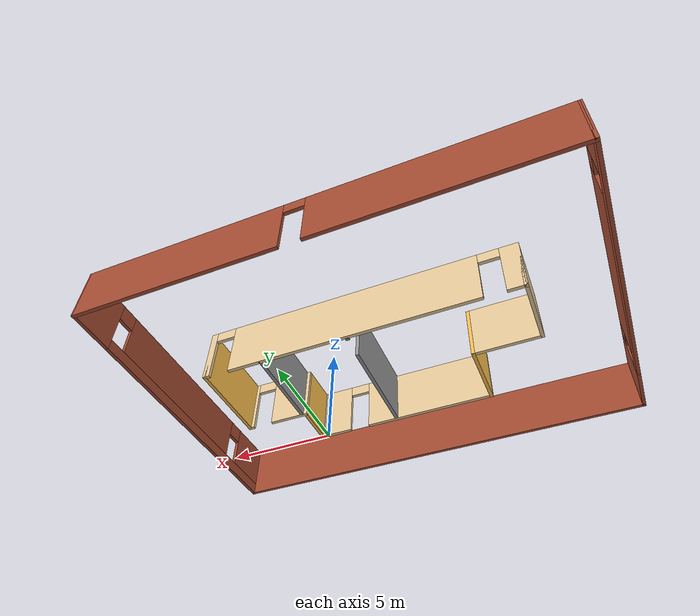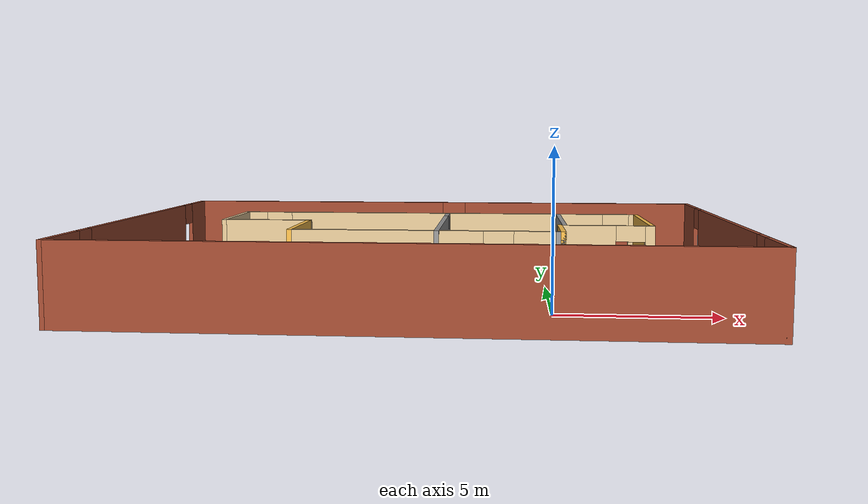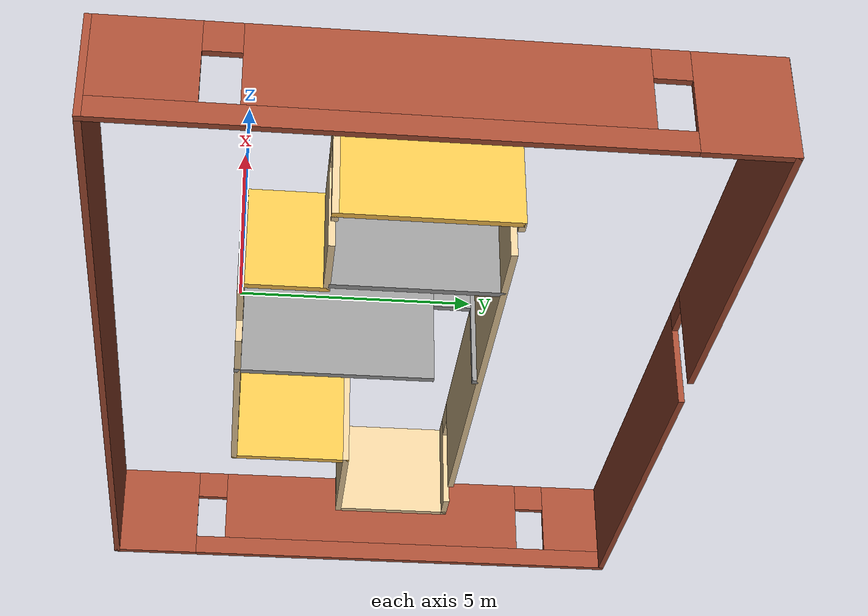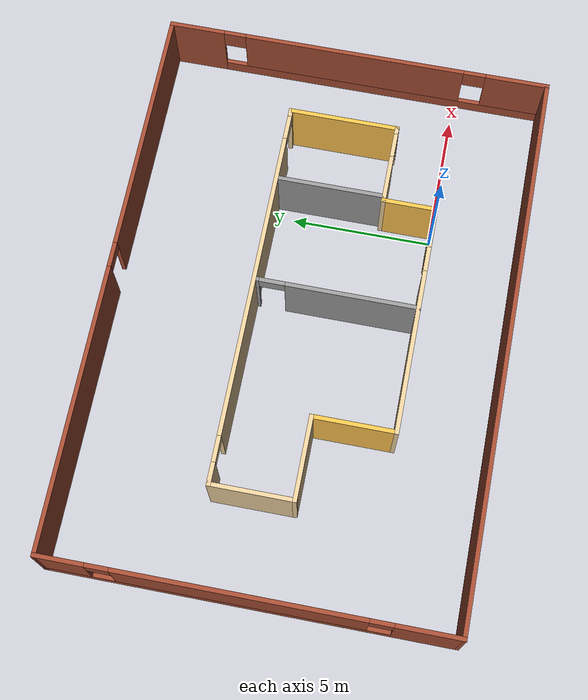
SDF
<?xml version='1.0'?>
<sdf version='1.6'>
  <model name='p1building'>
    <pose frame=''>-4.0735 3.744 0 0 -0 0</pose>
    <link name='Wall_0'>
      <pose frame=''>0.1485 -3.744 0 0 -0 3.14159</pose>
      <visual name='Wall_0_Visual_0'>
        <pose frame=''>-3.3877 0 1.25 0 -0 0</pose>
        <geometry>
          <box>
            <size>1.22459 0.15 2.5</size>
          </box>
        </geometry>
        <material>
          <script>
            <uri>file://media/materials/scripts/gazebo.material</uri>
            <name>Gazebo/Grey</name>
          </script>
          <ambient>0.921569 0.807843 0.615686 1</ambient>
        </material>
        <meta>
          <layer>0</layer>
        </meta>
      </visual>
      <collision name='Wall_0_Collision_0'>
        <geometry>
          <box>
            <size>1.22459 0.15 2.5</size>
          </box>
        </geometry>
        <pose frame=''>-3.3877 0 1.25 0 -0 0</pose>
      </collision>
      <visual name='Wall_0_Visual_1'>
        <pose frame=''>1.0623 0 1.25 0 -0 0</pose>
        <geometry>
          <box>
            <size>5.87541 0.15 2.5</size>
          </box>
        </geometry>
        <material>
          <script>
            <uri>file://media/materials/scripts/gazebo.material</uri>
            <name>Gazebo/Grey</name>
          </script>
          <ambient>0.921569 0.807843 0.615686 1</ambient>
        </material>
        <meta>
          <layer>0</layer>
        </meta>
      </visual>
      <collision name='Wall_0_Collision_1'>
        <geometry>
          <box>
            <size>5.87541 0.15 2.5</size>
          </box>
        </geometry>
        <pose frame=''>1.0623 0 1.25 0 -0 0</pose>
      </collision>
      <visual name='Wall_0_Visual_2'>
        <pose frame=''>-2.32541 0 2.25 0 -0 0</pose>
        <geometry>
          <box>
            <size>0.9 0.15 0.5</size>
          </box>
        </geometry>
        <material>
          <script>
            <uri>file://media/materials/scripts/gazebo.material</uri>
            <name>Gazebo/Grey</name>
          </script>
          <ambient>0.921569 0.807843 0.615686 1</ambient>
        </material>
        <meta>
          <layer>0</layer>
        </meta>
      </visual>
      <collision name='Wall_0_Collision_2'>
        <geometry>
          <box>
            <size>0.9 0.15 0.5</size>
          </box>
        </geometry>
        <pose frame=''>-2.32541 0 2.25 0 -0 0</pose>
      </collision>
    </link>
    <link name='Wall_10'>
      <pose frame=''>5.7985 -1.894 0 0 -0 3.14159</pose>
      <visual name='Wall_10_Visual_0'>
        <pose frame=''>-1.35058 0 1.25 0 -0 0</pose>
        <geometry>
          <box>
            <size>0.298838 0.15 2.5</size>
          </box>
        </geometry>
        <material>
          <script>
            <uri>file://media/materials/scripts/gazebo.material</uri>
            <name>Gazebo/Grey</name>
          </script>
          <ambient>0.921569 0.807843 0.615686 1</ambient>
        </material>
        <meta>
          <layer>0</layer>
        </meta>
      </visual>
      <collision name='Wall_10_Collision_0'>
        <geometry>
          <box>
            <size>0.298838 0.15 2.5</size>
          </box>
        </geometry>
        <pose frame=''>-1.35058 0 1.25 0 -0 0</pose>
      </collision>
      <visual name='Wall_10_Visual_1'>
        <pose frame=''>0.599419 0 1.25 0 -0 0</pose>
        <geometry>
          <box>
            <size>1.80116 0.15 2.5</size>
          </box>
        </geometry>
        <material>
          <script>
            <uri>file://media/materials/scripts/gazebo.material</uri>
            <name>Gazebo/Grey</name>
          </script>
          <ambient>0.921569 0.807843 0.615686 1</ambient>
        </material>
        <meta>
          <layer>0</layer>
        </meta>
      </visual>
      <collision name='Wall_10_Collision_1'>
        <geometry>
          <box>
            <size>1.80116 0.15 2.5</size>
          </box>
        </geometry>
        <pose frame=''>0.599419 0 1.25 0 -0 0</pose>
      </collision>
      <visual name='Wall_10_Visual_2'>
        <pose frame=''>-0.751162 0 2.25 0 -0 0</pose>
        <geometry>
          <box>
            <size>0.9 0.15 0.5</size>
          </box>
        </geometry>
        <material>
          <script>
            <uri>file://media/materials/scripts/gazebo.material</uri>
            <name>Gazebo/Grey</name>
          </script>
          <ambient>0.921569 0.807843 0.615686 1</ambient>
        </material>
        <meta>
          <layer>0</layer>
        </meta>
      </visual>
      <collision name='Wall_10_Collision_2'>
        <geometry>
          <box>
            <size>0.9 0.15 0.5</size>
          </box>
        </geometry>
        <pose frame=''>-0.751162 0 2.25 0 -0 0</pose>
      </collision>
    </link>
    <link name='Wall_12'>
      <collision name='Wall_12_Collision'>
        <geometry>
          <box>
            <size>2 0.15 2.5</size>
          </box>
        </geometry>
        <pose frame=''>0 0 1.25 0 -0 0</pose>
      </collision>
      <visual name='Wall_12_Visual'>
        <pose frame=''>0 0 1.25 0 -0 0</pose>
        <geometry>
          <box>
            <size>2 0.15 2.5</size>
          </box>
        </geometry>
        <material>
          <script>
            <uri>file://media/materials/scripts/gazebo.material</uri>
            <name>Gazebo/Grey</name>
          </script>
          <ambient>1 0.764706 0.305882 1</ambient>
        </material>
        <meta>
          <layer>0</layer>
        </meta>
      </visual>
      <pose frame=''>4.3735 -2.819 0 0 0 -1.5708</pose>
    </link>
    <link name='Wall_13'>
      <collision name='Wall_13_Collision'>
        <geometry>
          <box>
            <size>0.45 0.15 2.5</size>
          </box>
        </geometry>
        <pose frame=''>0 0 1.25 0 -0 0</pose>
      </collision>
      <visual name='Wall_13_Visual'>
        <pose frame=''>0 0 1.25 0 -0 0</pose>
        <geometry>
          <box>
            <size>0.45 0.15 2.5</size>
          </box>
        </geometry>
        <material>
          <script>
            <uri>file://media/materials/scripts/gazebo.material</uri>
            <name>Gazebo/Grey</name>
          </script>
          <ambient>1 1 1 1</ambient>
        </material>
        <meta>
          <layer>0</layer>
        </meta>
      </visual>
      <pose frame=''>4.2235 -3.744 0 0 -0 3.14159</pose>
    </link>
    <link name='Wall_15'>
      <collision name='Wall_15_Collision'>
        <geometry>
          <box>
            <size>20 0.15 2.5</size>
          </box>
        </geometry>
        <pose frame=''>0 0 1.25 0 -0 0</pose>
      </collision>
      <visual name='Wall_15_Visual'>
        <pose frame=''>0 0 1.25 0 -0 0</pose>
        <geometry>
          <box>
            <size>20 0.15 2.5</size>
          </box>
        </geometry>
        <material>
          <script>
            <uri>file://media/materials/scripts/gazebo.material</uri>
            <name>Gazebo/Bricks</name>
          </script>
          <ambient>1 1 1 1</ambient>
        </material>
        <meta>
          <layer>0</layer>
        </meta>
      </visual>
      <pose frame=''>0.0025 -6.925 0 0 -0 3.14159</pose>
    </link>
    <link name='Wall_16'>
      <pose frame=''>-9.925 0 0 0 -0 1.57116</pose>
      <visual name='Wall_16_Visual_0'>
        <pose frame=''>-5.85842 0 1.25 0 -0 0</pose>
        <geometry>
          <box>
            <size>2.28316 0.15 2.5</size>
          </box>
        </geometry>
        <material>
          <script>
            <uri>file://media/materials/scripts/gazebo.material</uri>
            <name>Gazebo/Bricks</name>
          </script>
          <ambient>1 1 1 1</ambient>
        </material>
        <meta>
          <layer>0</layer>
        </meta>
      </visual>
      <collision name='Wall_16_Collision_0'>
        <geometry>
          <box>
            <size>2.28316 0.15 2.5</size>
          </box>
        </geometry>
        <pose frame=''>-5.85842 0 1.25 0 -0 0</pose>
      </collision>
      <visual name='Wall_16_Visual_1'>
        <pose frame=''>1.14158 0 0.25 0 -0 0</pose>
        <geometry>
          <box>
            <size>11.7168 0.15 0.5</size>
          </box>
        </geometry>
        <material>
          <script>
            <uri>file://media/materials/scripts/gazebo.material</uri>
            <name>Gazebo/Bricks</name>
          </script>
          <ambient>1 1 1 1</ambient>
        </material>
        <meta>
          <layer>0</layer>
        </meta>
      </visual>
      <collision name='Wall_16_Collision_1'>
        <geometry>
          <box>
            <size>11.7168 0.15 0.5</size>
          </box>
        </geometry>
        <pose frame=''>1.14158 0 0.25 0 -0 0</pose>
      </collision>
      <visual name='Wall_16_Visual_2'>
        <pose frame=''>0.280596 0 1.5 0 -0 0</pose>
        <geometry>
          <box>
            <size>8.39488 0.15 2</size>
          </box>
        </geometry>
        <material>
          <script>
            <uri>file://media/materials/scripts/gazebo.material</uri>
            <name>Gazebo/Bricks</name>
          </script>
          <ambient>1 1 1 1</ambient>
        </material>
        <meta>
          <layer>0</layer>
        </meta>
      </visual>
      <collision name='Wall_16_Collision_2'>
        <geometry>
          <box>
            <size>8.39488 0.15 2</size>
          </box>
        </geometry>
        <pose frame=''>0.280596 0 1.5 0 -0 0</pose>
      </collision>
      <visual name='Wall_16_Visual_3'>
        <pose frame=''>6.13902 0 1.5 0 -0 0</pose>
        <geometry>
          <box>
            <size>1.72196 0.15 2</size>
          </box>
        </geometry>
        <material>
          <script>
            <uri>file://media/materials/scripts/gazebo.material</uri>
            <name>Gazebo/Bricks</name>
          </script>
          <ambient>1 1 1 1</ambient>
        </material>
        <meta>
          <layer>0</layer>
        </meta>
      </visual>
      <collision name='Wall_16_Collision_3'>
        <geometry>
          <box>
            <size>1.72196 0.15 2</size>
          </box>
        </geometry>
        <pose frame=''>6.13902 0 1.5 0 -0 0</pose>
      </collision>
      <visual name='Wall_16_Visual_4'>
        <pose frame=''>-4.31684 0 2.125 0 -0 0</pose>
        <geometry>
          <box>
            <size>0.8 0.15 0.75</size>
          </box>
        </geometry>
        <material>
          <script>
            <uri>file://media/materials/scripts/gazebo.material</uri>
            <name>Gazebo/Bricks</name>
          </script>
          <ambient>1 1 1 1</ambient>
        </material>
        <meta>
          <layer>0</layer>
        </meta>
      </visual>
      <collision name='Wall_16_Collision_4'>
        <geometry>
          <box>
            <size>0.8 0.15 0.75</size>
          </box>
        </geometry>
        <pose frame=''>-4.31684 0 2.125 0 -0 0</pose>
      </collision>
      <visual name='Wall_16_Visual_5'>
        <pose frame=''>4.87803 0 2.125 0 -0 0</pose>
        <geometry>
          <box>
            <size>0.8 0.15 0.75</size>
          </box>
        </geometry>
        <material>
          <script>
            <uri>file://media/materials/scripts/gazebo.material</uri>
            <name>Gazebo/Bricks</name>
          </script>
          <ambient>1 1 1 1</ambient>
        </material>
        <meta>
          <layer>0</layer>
        </meta>
      </visual>
      <collision name='Wall_16_Collision_5'>
        <geometry>
          <box>
            <size>0.8 0.15 0.75</size>
          </box>
        </geometry>
        <pose frame=''>4.87803 0 2.125 0 -0 0</pose>
      </collision>
    </link>
    <link name='Wall_18'>
      <pose frame=''>-0.0025 6.925 0 0 -0 0</pose>
      <visual name='Wall_18_Visual_0'>
        <pose frame=''>-4.92652 0 1.25 0 -0 0</pose>
        <geometry>
          <box>
            <size>10.147 0.15 2.5</size>
          </box>
        </geometry>
        <material>
          <script>
            <uri>file://media/materials/scripts/gazebo.material</uri>
            <name>Gazebo/Bricks</name>
          </script>
          <ambient>1 1 1 1</ambient>
        </material>
        <meta>
          <layer>0</layer>
        </meta>
      </visual>
      <collision name='Wall_18_Collision_0'>
        <geometry>
          <box>
            <size>10.147 0.15 2.5</size>
          </box>
        </geometry>
        <pose frame=''>-4.92652 0 1.25 0 -0 0</pose>
      </collision>
      <visual name='Wall_18_Visual_1'>
        <pose frame=''>5.52348 0 1.25 0 -0 0</pose>
        <geometry>
          <box>
            <size>8.95305 0.15 2.5</size>
          </box>
        </geometry>
        <material>
          <script>
            <uri>file://media/materials/scripts/gazebo.material</uri>
            <name>Gazebo/Bricks</name>
          </script>
          <ambient>1 1 1 1</ambient>
        </material>
        <meta>
          <layer>0</layer>
        </meta>
      </visual>
      <collision name='Wall_18_Collision_1'>
        <geometry>
          <box>
            <size>8.95305 0.15 2.5</size>
          </box>
        </geometry>
        <pose frame=''>5.52348 0 1.25 0 -0 0</pose>
      </collision>
      <visual name='Wall_18_Visual_2'>
        <pose frame=''>0.596952 0 2.25 0 -0 0</pose>
        <geometry>
          <box>
            <size>0.9 0.15 0.5</size>
          </box>
        </geometry>
        <material>
          <script>
            <uri>file://media/materials/scripts/gazebo.material</uri>
            <name>Gazebo/Bricks</name>
          </script>
          <ambient>1 1 1 1</ambient>
        </material>
        <meta>
          <layer>0</layer>
        </meta>
      </visual>
      <collision name='Wall_18_Collision_2'>
        <geometry>
          <box>
            <size>0.9 0.15 0.5</size>
          </box>
        </geometry>
        <pose frame=''>0.596952 0 2.25 0 -0 0</pose>
      </collision>
    </link>
    <link name='Wall_20'>
      <pose frame=''>9.925 0 0 0 0 -1.57044</pose>
      <visual name='Wall_20_Visual_0'>
        <pose frame=''>-5.98635 0 1.25 0 -0 0</pose>
        <geometry>
          <box>
            <size>2.02729 0.15 2.5</size>
          </box>
        </geometry>
        <material>
          <script>
            <uri>file://media/materials/scripts/gazebo.material</uri>
            <name>Gazebo/Bricks</name>
          </script>
          <ambient>1 1 1 1</ambient>
        </material>
        <meta>
          <layer>0</layer>
        </meta>
      </visual>
      <collision name='Wall_20_Collision_0'>
        <geometry>
          <box>
            <size>2.02729 0.15 2.5</size>
          </box>
        </geometry>
        <pose frame=''>-5.98635 0 1.25 0 -0 0</pose>
      </collision>
      <visual name='Wall_20_Visual_1'>
        <pose frame=''>1.01365 0 0.25 0 -0 0</pose>
        <geometry>
          <box>
            <size>11.9727 0.15 0.5</size>
          </box>
        </geometry>
        <material>
          <script>
            <uri>file://media/materials/scripts/gazebo.material</uri>
            <name>Gazebo/Bricks</name>
          </script>
          <ambient>1 1 1 1</ambient>
        </material>
        <meta>
          <layer>0</layer>
        </meta>
      </visual>
      <collision name='Wall_20_Collision_1'>
        <geometry>
          <box>
            <size>11.9727 0.15 0.5</size>
          </box>
        </geometry>
        <pose frame=''>1.01365 0 0.25 0 -0 0</pose>
      </collision>
      <visual name='Wall_20_Visual_2'>
        <pose frame=''>-0.142711 0 1.5 0 -0 0</pose>
        <geometry>
          <box>
            <size>8.05999 0.15 2</size>
          </box>
        </geometry>
        <material>
          <script>
            <uri>file://media/materials/scripts/gazebo.material</uri>
            <name>Gazebo/Bricks</name>
          </script>
          <ambient>1 1 1 1</ambient>
        </material>
        <meta>
          <layer>0</layer>
        </meta>
      </visual>
      <collision name='Wall_20_Collision_2'>
        <geometry>
          <box>
            <size>8.05999 0.15 2</size>
          </box>
        </geometry>
        <pose frame=''>-0.142711 0 1.5 0 -0 0</pose>
      </collision>
      <visual name='Wall_20_Visual_3'>
        <pose frame=''>5.84364 0 1.5 0 -0 0</pose>
        <geometry>
          <box>
            <size>2.31271 0.15 2</size>
          </box>
        </geometry>
        <material>
          <script>
            <uri>file://media/materials/scripts/gazebo.material</uri>
            <name>Gazebo/Bricks</name>
          </script>
          <ambient>1 1 1 1</ambient>
        </material>
        <meta>
          <layer>0</layer>
        </meta>
      </visual>
      <collision name='Wall_20_Collision_3'>
        <geometry>
          <box>
            <size>2.31271 0.15 2</size>
          </box>
        </geometry>
        <pose frame=''>5.84364 0 1.5 0 -0 0</pose>
      </collision>
      <visual name='Wall_20_Visual_4'>
        <pose frame=''>-4.57271 0 2.125 0 -0 0</pose>
        <geometry>
          <box>
            <size>0.8 0.15 0.75</size>
          </box>
        </geometry>
        <material>
          <script>
            <uri>file://media/materials/scripts/gazebo.material</uri>
            <name>Gazebo/Bricks</name>
          </script>
          <ambient>1 1 1 1</ambient>
        </material>
        <meta>
          <layer>0</layer>
        </meta>
      </visual>
      <collision name='Wall_20_Collision_4'>
        <geometry>
          <box>
            <size>0.8 0.15 0.75</size>
          </box>
        </geometry>
        <pose frame=''>-4.57271 0 2.125 0 -0 0</pose>
      </collision>
      <visual name='Wall_20_Visual_5'>
        <pose frame=''>4.28728 0 2.125 0 -0 0</pose>
        <geometry>
          <box>
            <size>0.8 0.15 0.75</size>
          </box>
        </geometry>
        <material>
          <script>
            <uri>file://media/materials/scripts/gazebo.material</uri>
            <name>Gazebo/Bricks</name>
          </script>
          <ambient>1 1 1 1</ambient>
        </material>
        <meta>
          <layer>0</layer>
        </meta>
      </visual>
      <collision name='Wall_20_Collision_5'>
        <geometry>
          <box>
            <size>0.8 0.15 0.75</size>
          </box>
        </geometry>
        <pose frame=''>4.28728 0 2.125 0 -0 0</pose>
      </collision>
    </link>
    <link name='Wall_22'>
      <collision name='Wall_22_Collision'>
        <geometry>
          <box>
            <size>3.85 0.15 2.5</size>
          </box>
        </geometry>
        <pose frame=''>0 0 1.25 0 -0 0</pose>
      </collision>
      <visual name='Wall_22_Visual'>
        <pose frame=''>0 0 1.25 0 -0 0</pose>
        <geometry>
          <box>
            <size>3.85 0.15 2.5</size>
          </box>
        </geometry>
        <material>
          <script>
            <uri>file://media/materials/scripts/gazebo.material</uri>
            <name>Gazebo/Grey</name>
          </script>
          <ambient>1 1 1 1</ambient>
        </material>
        <meta>
          <layer>0</layer>
        </meta>
      </visual>
      <pose frame=''>4.5285 0.067 0 0 0 -1.5708</pose>
    </link>
    <link name='Wall_26'>
      <pose frame=''>0.644611 -0.949596 0 0 0 -1.5708</pose>
      <visual name='Wall_26_Visual_0'>
        <pose frame=''>-2.79939 0 1.25 0 -0 0</pose>
        <geometry>
          <box>
            <size>0.151226 0.15 2.5</size>
          </box>
        </geometry>
        <material>
          <script>
            <uri>file://media/materials/scripts/gazebo.material</uri>
            <name>Gazebo/Grey</name>
          </script>
          <ambient>1 1 1 1</ambient>
        </material>
        <meta>
          <layer>0</layer>
        </meta>
      </visual>
      <collision name='Wall_26_Collision_0'>
        <geometry>
          <box>
            <size>0.151226 0.15 2.5</size>
          </box>
        </geometry>
        <pose frame=''>-2.79939 0 1.25 0 -0 0</pose>
      </collision>
      <visual name='Wall_26_Visual_1'>
        <pose frame=''>0.525613 0 1.25 0 -0 0</pose>
        <geometry>
          <box>
            <size>4.69877 0.15 2.5</size>
          </box>
        </geometry>
        <material>
          <script>
            <uri>file://media/materials/scripts/gazebo.material</uri>
            <name>Gazebo/Grey</name>
          </script>
          <ambient>1 1 1 1</ambient>
        </material>
        <meta>
          <layer>0</layer>
        </meta>
      </visual>
      <collision name='Wall_26_Collision_1'>
        <geometry>
          <box>
            <size>4.69877 0.15 2.5</size>
          </box>
        </geometry>
        <pose frame=''>0.525613 0 1.25 0 -0 0</pose>
      </collision>
      <visual name='Wall_26_Visual_2'>
        <pose frame=''>-2.27377 0 2.25 0 -0 0</pose>
        <geometry>
          <box>
            <size>0.9 0.15 0.5</size>
          </box>
        </geometry>
        <material>
          <script>
            <uri>file://media/materials/scripts/gazebo.material</uri>
            <name>Gazebo/Grey</name>
          </script>
          <ambient>1 1 1 1</ambient>
        </material>
        <meta>
          <layer>0</layer>
        </meta>
      </visual>
      <collision name='Wall_26_Collision_2'>
        <geometry>
          <box>
            <size>0.9 0.15 0.5</size>
          </box>
        </geometry>
        <pose frame=''>-2.27377 0 2.25 0 -0 0</pose>
      </collision>
    </link>
    <link name='Wall_3'>
      <collision name='Wall_3_Collision'>
        <geometry>
          <box>
            <size>3 0.15 2.5</size>
          </box>
        </geometry>
        <pose frame=''>0 0 1.25 0 -0 0</pose>
      </collision>
      <visual name='Wall_3_Visual'>
        <pose frame=''>0 0 1.25 0 -0 0</pose>
        <geometry>
          <box>
            <size>3 0.15 2.5</size>
          </box>
        </geometry>
        <material>
          <script>
            <uri>file://media/materials/scripts/gazebo.material</uri>
            <name>Gazebo/Grey</name>
          </script>
          <ambient>1 0.764706 0.305882 1</ambient>
        </material>
        <meta>
          <layer>0</layer>
        </meta>
      </visual>
      <pose frame=''>-3.7765 -2.319 0 0 -0 1.5708</pose>
    </link>
    <link name='Wall_4'>
      <collision name='Wall_4_Collision'>
        <geometry>
          <box>
            <size>3 0.15 2.5</size>
          </box>
        </geometry>
        <pose frame=''>0 0 1.25 0 -0 0</pose>
      </collision>
      <visual name='Wall_4_Visual'>
        <pose frame=''>0 0 1.25 0 -0 0</pose>
        <geometry>
          <box>
            <size>3 0.15 2.5</size>
          </box>
        </geometry>
        <material>
          <script>
            <uri>file://media/materials/scripts/gazebo.material</uri>
            <name>Gazebo/Grey</name>
          </script>
          <ambient>0.921569 0.807843 0.615686 1</ambient>
        </material>
        <meta>
          <layer>0</layer>
        </meta>
      </visual>
      <pose frame=''>-5.2015 -0.894 0 0 -0 3.14159</pose>
    </link>
    <link name='Wall_5'>
      <collision name='Wall_5_Collision'>
        <geometry>
          <box>
            <size>3 0.15 2.5</size>
          </box>
        </geometry>
        <pose frame=''>0 0 1.25 0 -0 0</pose>
      </collision>
      <visual name='Wall_5_Visual'>
        <pose frame=''>0 0 1.25 0 -0 0</pose>
        <geometry>
          <box>
            <size>3 0.15 2.5</size>
          </box>
        </geometry>
        <material>
          <script>
            <uri>file://media/materials/scripts/gazebo.material</uri>
            <name>Gazebo/Grey</name>
          </script>
          <ambient>0.921569 0.807843 0.615686 1</ambient>
        </material>
        <meta>
          <layer>0</layer>
        </meta>
      </visual>
      <pose frame=''>-6.6265 0.531 0 0 -0 1.5708</pose>
    </link>
    <link name='Wall_7'>
      <pose frame=''>0.2985 1.956 0 0 -0 0</pose>
      <visual name='Wall_7_Visual_0'>
        <pose frame=''>-6.59491 0 1.25 0 -0 0</pose>
        <geometry>
          <box>
            <size>0.810185 0.15 2.5</size>
          </box>
        </geometry>
        <material>
          <script>
            <uri>file://media/materials/scripts/gazebo.material</uri>
            <name>Gazebo/Grey</name>
          </script>
          <ambient>0.921569 0.807843 0.615686 1</ambient>
        </material>
        <meta>
          <layer>0</layer>
        </meta>
      </visual>
      <collision name='Wall_7_Collision_0'>
        <geometry>
          <box>
            <size>0.810185 0.15 2.5</size>
          </box>
        </geometry>
        <pose frame=''>-6.59491 0 1.25 0 -0 0</pose>
      </collision>
      <visual name='Wall_7_Visual_1'>
        <pose frame=''>0.246824 0 1.25 0 -0 0</pose>
        <geometry>
          <box>
            <size>11.0733 0.15 2.5</size>
          </box>
        </geometry>
        <material>
          <script>
            <uri>file://media/materials/scripts/gazebo.material</uri>
            <name>Gazebo/Grey</name>
          </script>
          <ambient>0.921569 0.807843 0.615686 1</ambient>
        </material>
        <meta>
          <layer>0</layer>
        </meta>
      </visual>
      <collision name='Wall_7_Collision_1'>
        <geometry>
          <box>
            <size>11.0733 0.15 2.5</size>
          </box>
        </geometry>
        <pose frame=''>0.246824 0 1.25 0 -0 0</pose>
      </collision>
      <visual name='Wall_7_Visual_2'>
        <pose frame=''>6.84173 0 1.25 0 -0 0</pose>
        <geometry>
          <box>
            <size>0.316536 0.15 2.5</size>
          </box>
        </geometry>
        <material>
          <script>
            <uri>file://media/materials/scripts/gazebo.material</uri>
            <name>Gazebo/Grey</name>
          </script>
          <ambient>0.921569 0.807843 0.615686 1</ambient>
        </material>
        <meta>
          <layer>0</layer>
        </meta>
      </visual>
      <collision name='Wall_7_Collision_2'>
        <geometry>
          <box>
            <size>0.316536 0.15 2.5</size>
          </box>
        </geometry>
        <pose frame=''>6.84173 0 1.25 0 -0 0</pose>
      </collision>
      <visual name='Wall_7_Visual_3'>
        <pose frame=''>-5.73982 0 2.25 0 -0 0</pose>
        <geometry>
          <box>
            <size>0.9 0.15 0.5</size>
          </box>
        </geometry>
        <material>
          <script>
            <uri>file://media/materials/scripts/gazebo.material</uri>
            <name>Gazebo/Grey</name>
          </script>
          <ambient>0.921569 0.807843 0.615686 1</ambient>
        </material>
        <meta>
          <layer>0</layer>
        </meta>
      </visual>
      <collision name='Wall_7_Collision_3'>
        <geometry>
          <box>
            <size>0.9 0.15 0.5</size>
          </box>
        </geometry>
        <pose frame=''>-5.73982 0 2.25 0 -0 0</pose>
      </collision>
      <visual name='Wall_7_Visual_4'>
        <pose frame=''>6.23346 0 2.25 0 -0 0</pose>
        <geometry>
          <box>
            <size>0.9 0.15 0.5</size>
          </box>
        </geometry>
        <material>
          <script>
            <uri>file://media/materials/scripts/gazebo.material</uri>
            <name>Gazebo/Grey</name>
          </script>
          <ambient>0.921569 0.807843 0.615686 1</ambient>
        </material>
        <meta>
          <layer>0</layer>
        </meta>
      </visual>
      <collision name='Wall_7_Collision_4'>
        <geometry>
          <box>
            <size>0.9 0.15 0.5</size>
          </box>
        </geometry>
        <pose frame=''>6.23346 0 2.25 0 -0 0</pose>
      </collision>
    </link>
    <link name='Wall_9'>
      <collision name='Wall_9_Collision'>
        <geometry>
          <box>
            <size>4 0.15 2.5</size>
          </box>
        </geometry>
        <pose frame=''>0 0 1.25 0 -0 0</pose>
      </collision>
      <visual name='Wall_9_Visual'>
        <pose frame=''>0 0 1.25 0 -0 0</pose>
        <geometry>
          <box>
            <size>4 0.15 2.5</size>
          </box>
        </geometry>
        <material>
          <script>
            <uri>file://media/materials/scripts/gazebo.material</uri>
            <name>Gazebo/Grey</name>
          </script>
          <ambient>1 0.764706 0.305882 1</ambient>
        </material>
        <meta>
          <layer>0</layer>
        </meta>
      </visual>
      <pose frame=''>7.2235 0.031 0 0 0 -1.5708</pose>
    </link>
    <static>1</static>
  </model>
</sdf>
